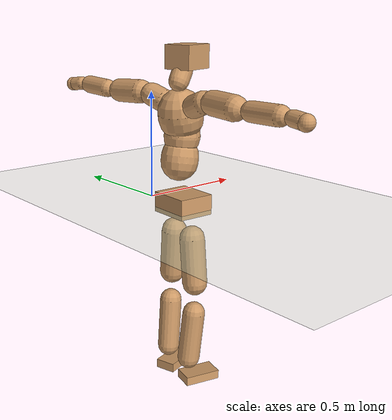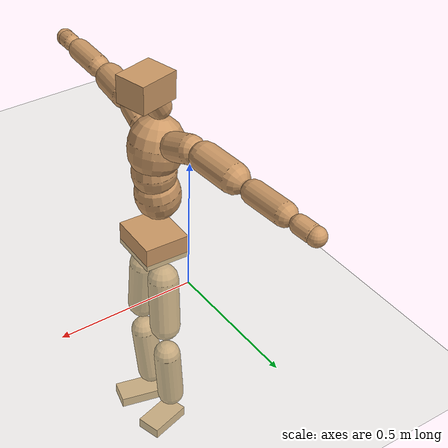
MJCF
<mujoco model="humanoid">
  <compiler coordinate="local" angle="radian"/>
  <default>
    <joint damping="0.0" armature="0.01" stiffness="0.0" limited="true"/>
    <geom conaffinity="1" condim="3" contype="7" margin="0.001" rgba="0.8 0.6 .4 1"/>
  </default>
  <asset>
    <texture type="skybox" builtin="gradient" rgb1=".4 .5 .6" rgb2="0 0 0" width="100" height="100"/>
    <texture builtin="flat" height="1278" mark="cross" markrgb="1 1 1" name="texgeom" random="0.01" rgb1="0.8 0.6 0.4" rgb2="0.8 0.6 0.4" type="cube" width="127"/>
    <texture builtin="checker" height="100" name="texplane" rgb1="0 0 0" rgb2="0.8 0.8 0.8" type="2d" width="100"/>
    <material name="MatPlane" reflectance="0.5" shininess="1" specular="1" texrepeat="60 60" texture="texplane"/>
    <material name="geom" texture="texgeom" texuniform="true"/>
  </asset>
  <worldbody>
    <light cutoff="100" diffuse="1 1 1" dir="-0 0 -1.3" directional="true" exponent="1" pos="0 0 1.3" specular=".1 .1 .1"/>
    <geom conaffinity="1" condim="3" name="floor" pos="0 0 0" rgba="0.8 0.9 0.8 1" size="100 100 .2" type="plane" material="MatPlane"/>
    <body name="Pelvis" pos="-0.005 -0.2477 0.0308">
      <freejoint name="Pelvis"/>
      <geom type="box" contype="1" conaffinity="1" density="500" pos="-0.0099 0.0004 -0.0074" size="0.0861 0.0982 0.0463" quat="0.9998 0.0000 0.0000 -0.0197" name="Pelvis"/>
      <body name="L_Hip" pos="-0.0133 0.0532 -0.0811">
        <joint name="L_Hip_x" type="hinge" pos="0 0 0" axis="1 0 0" stiffness="800" damping="80" armature="0.02" range="-180.0000 180.0000"/>
        <joint name="L_Hip_y" type="hinge" pos="0 0 0" axis="0 1 0" stiffness="800" damping="80" armature="0.02" range="-180.0000 180.0000"/>
        <joint name="L_Hip_z" type="hinge" pos="0 0 0" axis="0 0 1" stiffness="800" damping="80" armature="0.02" range="-180.0000 180.0000"/>
        <geom type="capsule" contype="1" conaffinity="1" density="500" fromto="0.0023 0.0074 -0.0713 0.0092 0.0295 -0.2852" size="0.0582" name="L_Hip"/>
        <body name="L_Knee" pos="0.0115 0.0368 -0.3565">
          <joint name="L_Knee_x" type="hinge" pos="0 0 0" axis="1 0 0" stiffness="800" damping="80" armature="0.02" range="-180.0000 180.0000"/>
          <joint name="L_Knee_y" type="hinge" pos="0 0 0" axis="0 1 0" stiffness="800" damping="80" armature="0.02" range="-180.0000 180.0000"/>
          <joint name="L_Knee_z" type="hinge" pos="0 0 0" axis="0 0 1" stiffness="800" damping="80" armature="0.02" range="-180.0000 180.0000"/>
          <geom type="capsule" contype="1" conaffinity="1" density="500" fromto="-0.0073 -0.0029 -0.0784 -0.0292 -0.0115 -0.3137" size="0.0518" name="L_Knee"/>
          <body name="L_Ankle" pos="-0.0365 -0.0143 -0.3921">
            <joint name="L_Ankle_x" type="hinge" pos="0 0 0" axis="1 0 0" stiffness="800" damping="80" armature="0.02" range="-180.0000 180.0000"/>
            <joint name="L_Ankle_y" type="hinge" pos="0 0 0" axis="0 1 0" stiffness="800" damping="80" armature="0.02" range="-180.0000 180.0000"/>
            <joint name="L_Ankle_z" type="hinge" pos="0 0 0" axis="0 0 1" stiffness="800" damping="80" armature="0.02" range="-180.0000 180.0000"/>
            <geom type="box" contype="1" conaffinity="1" density="500" pos="0.0580 0.0162 -0.0275" size="0.0838 0.0476 0.0215" quat="0.9907 0.0000 0.0000 0.1357" name="L_Ankle"/>
            <body name="L_Toe" pos="0.1159 0.0324 -0.0551">
              <joint name="L_Toe_x" type="hinge" pos="0 0 0" axis="1 0 0" stiffness="500" damping="50" armature="0.02" range="-180.0000 180.0000"/>
              <joint name="L_Toe_y" type="hinge" pos="0 0 0" axis="0 1 0" stiffness="500" damping="50" armature="0.02" range="-180.0000 180.0000"/>
              <joint name="L_Toe_z" type="hinge" pos="0 0 0" axis="0 0 1" stiffness="500" damping="50" armature="0.02" range="-180.0000 180.0000"/>
              <geom type="box" contype="1" conaffinity="1" density="500" pos="0.0000 0.0000 0.0271" size="0.001 0.0024 0.0011" quat="0.9900 0.0000 0.0000 0.1413" name="L_Toe"/>
            </body>
          </body>
        </body>
      </body>
      <body name="R_Hip" pos="-0.0076 -0.055 -0.0906">
        <joint name="R_Hip_x" type="hinge" pos="0 0 0" axis="1 0 0" stiffness="800" damping="80" armature="0.02" range="-180.0000 180.0000"/>
        <joint name="R_Hip_y" type="hinge" pos="0 0 0" axis="0 1 0" stiffness="800" damping="80" armature="0.02" range="-180.0000 180.0000"/>
        <joint name="R_Hip_z" type="hinge" pos="0 0 0" axis="0 0 1" stiffness="800" damping="80" armature="0.02" range="-180.0000 180.0000"/>
        <geom type="capsule" contype="1" conaffinity="1" density="500" fromto="-0.0001 -0.0073 -0.0710 -0.0005 -0.0291 -0.2841" size="0.0576" name="R_Hip"/>
        <body name="R_Knee" pos="-0.0007 -0.0364 -0.3551">
          <joint name="R_Knee_x" type="hinge" pos="0 0 0" axis="1 0 0" stiffness="800" damping="80" armature="0.02" range="-180.0000 180.0000"/>
          <joint name="R_Knee_y" type="hinge" pos="0 0 0" axis="0 1 0" stiffness="800" damping="80" armature="0.02" range="-180.0000 180.0000"/>
          <joint name="R_Knee_z" type="hinge" pos="0 0 0" axis="0 0 1" stiffness="800" damping="80" armature="0.02" range="-180.0000 180.0000"/>
          <geom type="capsule" contype="1" conaffinity="1" density="500" fromto="-0.0067 0.0037 -0.0772 -0.0266 0.0150 -0.3087" size="0.0519" name="R_Knee"/>
          <body name="R_Ankle" pos="-0.0333 0.0187 -0.3858">
            <joint name="R_Ankle_x" type="hinge" pos="0 0 0" axis="1 0 0" stiffness="800" damping="80" armature="0.02" range="-180.0000 180.0000"/>
            <joint name="R_Ankle_y" type="hinge" pos="0 0 0" axis="0 1 0" stiffness="800" damping="80" armature="0.02" range="-180.0000 180.0000"/>
            <joint name="R_Ankle_z" type="hinge" pos="0 0 0" axis="0 0 1" stiffness="800" damping="80" armature="0.02" range="-180.0000 180.0000"/>
            <geom type="box" contype="1" conaffinity="1" density="500" pos="0.0615 -0.0150 -0.0281" size="0.0849 0.0478 0.0209" quat="0.9929 0.0000 0.0000 -0.1192" name="R_Ankle"/>
            <body name="R_Toe" pos="0.1231 -0.03 -0.0562">
              <joint name="R_Toe_x" type="hinge" pos="0 0 0" axis="1 0 0" stiffness="500" damping="50" armature="0.02" range="-180.0000 180.0000"/>
              <joint name="R_Toe_y" type="hinge" pos="0 0 0" axis="0 1 0" stiffness="500" damping="50" armature="0.02" range="-180.0000 180.0000"/>
              <joint name="R_Toe_z" type="hinge" pos="0 0 0" axis="0 0 1" stiffness="500" damping="50" armature="0.02" range="-180.0000 180.0000"/>
              <geom type="box" contype="1" conaffinity="1" density="500" pos="0.0000 0.0000 0.0280" size="0.0011 0.0024 0.001" quat="0.9939 0.0000 0.0000 -0.1098" name="R_Toe"/>
            </body>
          </body>
        </body>
      </body>
      <body name="Torso" pos="-0.0384 0.0042 0.1274">
        <joint name="Torso_x" type="hinge" pos="0 0 0" axis="1 0 0" stiffness="1000" damping="100" armature="0.02" range="-180.0000 180.0000"/>
        <joint name="Torso_y" type="hinge" pos="0 0 0" axis="0 1 0" stiffness="1000" damping="100" armature="0.02" range="-180.0000 180.0000"/>
        <joint name="Torso_z" type="hinge" pos="0 0 0" axis="0 0 1" stiffness="1000" damping="100" armature="0.02" range="-180.0000 180.0000"/>
        <geom type="capsule" contype="1" conaffinity="1" density="500" fromto="0.0158 0.0036 0.0854 0.0106 0.0024 0.0569" size="0.0841" name="Torso"/>
        <body name="Spine" pos="0.0264 0.0061 0.1423">
          <joint name="Spine_x" type="hinge" pos="0 0 0" axis="1 0 0" stiffness="1000" damping="100" armature="0.02" range="-180.0000 180.0000"/>
          <joint name="Spine_y" type="hinge" pos="0 0 0" axis="0 1 0" stiffness="1000" damping="100" armature="0.02" range="-180.0000 180.0000"/>
          <joint name="Spine_z" type="hinge" pos="0 0 0" axis="0 0 1" stiffness="1000" damping="100" armature="0.02" range="-180.0000 180.0000"/>
          <geom type="capsule" contype="1" conaffinity="1" density="500" fromto="0.0026 -0.0008 0.0342 0.0017 -0.0005 0.0228" size="0.0815" name="Spine"/>
          <body name="Chest" pos="0.0044 -0.0013 0.057">
            <joint name="Chest_x" type="hinge" pos="0 0 0" axis="1 0 0" stiffness="1000" damping="100" armature="0.02" range="-180.0000 180.0000"/>
            <joint name="Chest_y" type="hinge" pos="0 0 0" axis="0 1 0" stiffness="1000" damping="100" armature="0.02" range="-180.0000 180.0000"/>
            <joint name="Chest_z" type="hinge" pos="0 0 0" axis="0 0 1" stiffness="1000" damping="100" armature="0.02" range="-180.0000 180.0000"/>
            <geom type="capsule" contype="1" conaffinity="1" density="500" fromto="-0.0178 -0.0049 0.0834 -0.0119 -0.0033 0.0556" size="0.101" name="Chest"/>
            <body name="Neck" pos="-0.0423 -0.0141 0.1999">
              <joint name="Neck_x" type="hinge" pos="0 0 0" axis="1 0 0" stiffness="500" damping="50" armature="0.02" range="-180.0000 180.0000"/>
              <joint name="Neck_y" type="hinge" pos="0 0 0" axis="0 1 0" stiffness="500" damping="50" armature="0.02" range="-180.0000 180.0000"/>
              <joint name="Neck_z" type="hinge" pos="0 0 0" axis="0 0 1" stiffness="500" damping="50" armature="0.02" range="-180.0000 180.0000"/>
              <geom type="capsule" contype="1" conaffinity="1" density="500" fromto="0.0086 0.0018 0.0152 0.0344 0.0071 0.0608" size="0.0449" name="Neck"/>
              <body name="Head" pos="0.043 0.0089 0.076">
                <joint name="Head_x" type="hinge" pos="0 0 0" axis="1 0 0" stiffness="500" damping="50" armature="0.02" range="-180.0000 180.0000"/>
                <joint name="Head_y" type="hinge" pos="0 0 0" axis="0 1 0" stiffness="500" damping="50" armature="0.02" range="-180.0000 180.0000"/>
                <joint name="Head_z" type="hinge" pos="0 0 0" axis="0 0 1" stiffness="500" damping="50" armature="0.02" range="-180.0000 180.0000"/>
                <geom type="box" contype="1" conaffinity="1" density="500" pos="0.0225 0.0054 0.0390" size="0.0767 0.0627 0.0522" quat="0.9930 0.0000 0.0000 0.1183" name="Head"/>
              </body>
            </body>
            <body name="L_Thorax" pos="-0.0211 0.071 0.1095">
              <joint name="L_Thorax_x" type="hinge" pos="0 0 0" axis="1 0 0" stiffness="500" damping="50" armature="0.02" range="-180.0000 180.0000"/>
              <joint name="L_Thorax_y" type="hinge" pos="0 0 0" axis="0 1 0" stiffness="500" damping="50" armature="0.02" range="-180.0000 180.0000"/>
              <joint name="L_Thorax_z" type="hinge" pos="0 0 0" axis="0 0 1" stiffness="500" damping="50" armature="0.02" range="-180.0000 180.0000"/>
              <geom type="capsule" contype="1" conaffinity="1" density="500" fromto="-0.0041 0.0245 0.0081 -0.0165 0.0982 0.0323" size="0.0518" name="L_Thorax"/>
              <body name="L_Shoulder" pos="-0.0206 0.1227 0.0403">
                <joint name="L_Shoulder_x" type="hinge" pos="0 0 0" axis="1 0 0" stiffness="500" damping="50" armature="0.02" range="-720.0000 720.0000"/>
                <joint name="L_Shoulder_y" type="hinge" pos="0 0 0" axis="0 1 0" stiffness="500" damping="50" armature="0.02" range="-720.0000 720.0000"/>
                <joint name="L_Shoulder_z" type="hinge" pos="0 0 0" axis="0 0 1" stiffness="500" damping="50" armature="0.02" range="-720.0000 720.0000"/>
                <geom type="capsule" contype="1" conaffinity="1" density="500" fromto="-0.0045 0.0464 -0.0020 -0.0181 0.1856 -0.0080" size="0.054" name="L_Shoulder"/>
                <body name="L_Elbow" pos="-0.0227 0.232 -0.01">
                  <joint name="L_Elbow_x" type="hinge" pos="0 0 0" axis="1 0 0" stiffness="500" damping="50" armature="0.02" range="-720.0000 720.0000"/>
                  <joint name="L_Elbow_y" type="hinge" pos="0 0 0" axis="0 1 0" stiffness="500" damping="50" armature="0.02" range="-720.0000 720.0000"/>
                  <joint name="L_Elbow_z" type="hinge" pos="0 0 0" axis="0 0 1" stiffness="500" damping="50" armature="0.02" range="-720.0000 720.0000"/>
                  <geom type="capsule" contype="1" conaffinity="1" density="500" fromto="-0.0016 0.0491 0.0021 -0.0064 0.1963 0.0082" size="0.042" name="L_Elbow"/>
                  <body name="L_Wrist" pos="-0.008 0.2454 0.0103">
                    <joint name="L_Wrist_x" type="hinge" pos="0 0 0" axis="1 0 0" stiffness="300" damping="30" armature="0.02" range="-180.0000 180.0000"/>
                    <joint name="L_Wrist_y" type="hinge" pos="0 0 0" axis="0 1 0" stiffness="300" damping="30" armature="0.02" range="-180.0000 180.0000"/>
                    <joint name="L_Wrist_z" type="hinge" pos="0 0 0" axis="0 0 1" stiffness="300" damping="30" armature="0.02" range="-180.0000 180.0000"/>
                    <geom type="capsule" contype="1" conaffinity="1" density="500" fromto="-0.0028 0.0162 -0.0020 -0.0114 0.0648 -0.0078" size="0.0324" name="L_Wrist"/>
                    <body name="L_Hand" pos="-0.0142 0.081 -0.0098">
                      <joint name="L_Hand_x" type="hinge" pos="0 0 0" axis="1 0 0" stiffness="300" damping="30" armature="0.02" range="-180.0000 180.0000"/>
                      <joint name="L_Hand_y" type="hinge" pos="0 0 0" axis="0 1 0" stiffness="300" damping="30" armature="0.02" range="-180.0000 180.0000"/>
                      <joint name="L_Hand_z" type="hinge" pos="0 0 0" axis="0 0 1" stiffness="300" damping="30" armature="0.02" range="-180.0000 180.0000"/>
                      <geom type="sphere" contype="1" conaffinity="1" density="500" size="0.0334" pos="0.0000 0.0000 0.0000" name="L_Hand"/>
                    </body>
                  </body>
                </body>
              </body>
            </body>
            <body name="R_Thorax" pos="-0.0257 -0.0816 0.1075">
              <joint name="R_Thorax_x" type="hinge" pos="0 0 0" axis="1 0 0" stiffness="500" damping="50" armature="0.02" range="-180.0000 180.0000"/>
              <joint name="R_Thorax_y" type="hinge" pos="0 0 0" axis="0 1 0" stiffness="500" damping="50" armature="0.02" range="-180.0000 180.0000"/>
              <joint name="R_Thorax_z" type="hinge" pos="0 0 0" axis="0 0 1" stiffness="500" damping="50" armature="0.02" range="-180.0000 180.0000"/>
              <geom type="capsule" contype="1" conaffinity="1" density="500" fromto="-0.0021 -0.0221 0.0081 -0.0082 -0.0883 0.0323" size="0.051" name="R_Thorax"/>
              <body name="R_Shoulder" pos="-0.0103 -0.1104 0.0403">
                <joint name="R_Shoulder_x" type="hinge" pos="0 0 0" axis="1 0 0" stiffness="500" damping="50" armature="0.02" range="-720.0000 720.0000"/>
                <joint name="R_Shoulder_y" type="hinge" pos="0 0 0" axis="0 1 0" stiffness="500" damping="50" armature="0.02" range="-720.0000 720.0000"/>
                <joint name="R_Shoulder_z" type="hinge" pos="0 0 0" axis="0 0 1" stiffness="500" damping="50" armature="0.02" range="-720.0000 720.0000"/>
                <geom type="capsule" contype="1" conaffinity="1" density="500" fromto="-0.0060 -0.0469 -0.0010 -0.0239 -0.1875 -0.0041" size="0.0536" name="R_Shoulder"/>
                <body name="R_Elbow" pos="-0.0298 -0.2343 -0.0051">
                  <joint name="R_Elbow_x" type="hinge" pos="0 0 0" axis="1 0 0" stiffness="500" damping="50" armature="0.02" range="-720.0000 720.0000"/>
                  <joint name="R_Elbow_y" type="hinge" pos="0 0 0" axis="0 1 0" stiffness="500" damping="50" armature="0.02" range="-720.0000 720.0000"/>
                  <joint name="R_Elbow_z" type="hinge" pos="0 0 0" axis="0 0 1" stiffness="500" damping="50" armature="0.02" range="-720.0000 720.0000"/>
                  <geom type="capsule" contype="1" conaffinity="1" density="500" fromto="-0.0012 -0.0489 0.0008 -0.0049 -0.1957 0.0032" size="0.042" name="R_Elbow"/>
                  <body name="R_Wrist" pos="-0.0061 -0.2446 0.004">
                    <joint name="R_Wrist_x" type="hinge" pos="0 0 0" axis="1 0 0" stiffness="300" damping="30" armature="0.02" range="-180.0000 180.0000"/>
                    <joint name="R_Wrist_y" type="hinge" pos="0 0 0" axis="0 1 0" stiffness="300" damping="30" armature="0.02" range="-180.0000 180.0000"/>
                    <joint name="R_Wrist_z" type="hinge" pos="0 0 0" axis="0 0 1" stiffness="300" damping="30" armature="0.02" range="-180.0000 180.0000"/>
                    <geom type="capsule" contype="1" conaffinity="1" density="500" fromto="-0.0018 -0.0164 -0.0016 -0.0072 -0.0656 -0.0063" size="0.0326" name="R_Wrist"/>
                    <body name="R_Hand" pos="-0.0091 -0.082 -0.0079">
                      <joint name="R_Hand_x" type="hinge" pos="0 0 0" axis="1 0 0" stiffness="300" damping="30" armature="0.02" range="-180.0000 180.0000"/>
                      <joint name="R_Hand_y" type="hinge" pos="0 0 0" axis="0 1 0" stiffness="300" damping="30" armature="0.02" range="-180.0000 180.0000"/>
                      <joint name="R_Hand_z" type="hinge" pos="0 0 0" axis="0 0 1" stiffness="300" damping="30" armature="0.02" range="-180.0000 180.0000"/>
                      <geom type="sphere" contype="1" conaffinity="1" density="500" size="0.0335" pos="0.0000 0.0000 0.0000" name="R_Hand"/>
                    </body>
                  </body>
                </body>
              </body>
            </body>
          </body>
        </body>
      </body>
    </body>
  </worldbody>
  <actuator>
    <motor name="L_Hip_x" joint="L_Hip_x" gear="500"/>
    <motor name="L_Hip_y" joint="L_Hip_y" gear="500"/>
    <motor name="L_Hip_z" joint="L_Hip_z" gear="500"/>
    <motor name="L_Knee_x" joint="L_Knee_x" gear="500"/>
    <motor name="L_Knee_y" joint="L_Knee_y" gear="500"/>
    <motor name="L_Knee_z" joint="L_Knee_z" gear="500"/>
    <motor name="L_Ankle_x" joint="L_Ankle_x" gear="500"/>
    <motor name="L_Ankle_y" joint="L_Ankle_y" gear="500"/>
    <motor name="L_Ankle_z" joint="L_Ankle_z" gear="500"/>
    <motor name="L_Toe_x" joint="L_Toe_x" gear="500"/>
    <motor name="L_Toe_y" joint="L_Toe_y" gear="500"/>
    <motor name="L_Toe_z" joint="L_Toe_z" gear="500"/>
    <motor name="R_Hip_x" joint="R_Hip_x" gear="500"/>
    <motor name="R_Hip_y" joint="R_Hip_y" gear="500"/>
    <motor name="R_Hip_z" joint="R_Hip_z" gear="500"/>
    <motor name="R_Knee_x" joint="R_Knee_x" gear="500"/>
    <motor name="R_Knee_y" joint="R_Knee_y" gear="500"/>
    <motor name="R_Knee_z" joint="R_Knee_z" gear="500"/>
    <motor name="R_Ankle_x" joint="R_Ankle_x" gear="500"/>
    <motor name="R_Ankle_y" joint="R_Ankle_y" gear="500"/>
    <motor name="R_Ankle_z" joint="R_Ankle_z" gear="500"/>
    <motor name="R_Toe_x" joint="R_Toe_x" gear="500"/>
    <motor name="R_Toe_y" joint="R_Toe_y" gear="500"/>
    <motor name="R_Toe_z" joint="R_Toe_z" gear="500"/>
    <motor name="Torso_x" joint="Torso_x" gear="500"/>
    <motor name="Torso_y" joint="Torso_y" gear="500"/>
    <motor name="Torso_z" joint="Torso_z" gear="500"/>
    <motor name="Spine_x" joint="Spine_x" gear="500"/>
    <motor name="Spine_y" joint="Spine_y" gear="500"/>
    <motor name="Spine_z" joint="Spine_z" gear="500"/>
    <motor name="Chest_x" joint="Chest_x" gear="500"/>
    <motor name="Chest_y" joint="Chest_y" gear="500"/>
    <motor name="Chest_z" joint="Chest_z" gear="500"/>
    <motor name="Neck_x" joint="Neck_x" gear="500"/>
    <motor name="Neck_y" joint="Neck_y" gear="500"/>
    <motor name="Neck_z" joint="Neck_z" gear="500"/>
    <motor name="Head_x" joint="Head_x" gear="500"/>
    <motor name="Head_y" joint="Head_y" gear="500"/>
    <motor name="Head_z" joint="Head_z" gear="500"/>
    <motor name="L_Thorax_x" joint="L_Thorax_x" gear="500"/>
    <motor name="L_Thorax_y" joint="L_Thorax_y" gear="500"/>
    <motor name="L_Thorax_z" joint="L_Thorax_z" gear="500"/>
    <motor name="L_Shoulder_x" joint="L_Shoulder_x" gear="500"/>
    <motor name="L_Shoulder_y" joint="L_Shoulder_y" gear="500"/>
    <motor name="L_Shoulder_z" joint="L_Shoulder_z" gear="500"/>
    <motor name="L_Elbow_x" joint="L_Elbow_x" gear="500"/>
    <motor name="L_Elbow_y" joint="L_Elbow_y" gear="500"/>
    <motor name="L_Elbow_z" joint="L_Elbow_z" gear="500"/>
    <motor name="L_Wrist_x" joint="L_Wrist_x" gear="500"/>
    <motor name="L_Wrist_y" joint="L_Wrist_y" gear="500"/>
    <motor name="L_Wrist_z" joint="L_Wrist_z" gear="500"/>
    <motor name="L_Hand_x" joint="L_Hand_x" gear="500"/>
    <motor name="L_Hand_y" joint="L_Hand_y" gear="500"/>
    <motor name="L_Hand_z" joint="L_Hand_z" gear="500"/>
    <motor name="R_Thorax_x" joint="R_Thorax_x" gear="500"/>
    <motor name="R_Thorax_y" joint="R_Thorax_y" gear="500"/>
    <motor name="R_Thorax_z" joint="R_Thorax_z" gear="500"/>
    <motor name="R_Shoulder_x" joint="R_Shoulder_x" gear="500"/>
    <motor name="R_Shoulder_y" joint="R_Shoulder_y" gear="500"/>
    <motor name="R_Shoulder_z" joint="R_Shoulder_z" gear="500"/>
    <motor name="R_Elbow_x" joint="R_Elbow_x" gear="500"/>
    <motor name="R_Elbow_y" joint="R_Elbow_y" gear="500"/>
    <motor name="R_Elbow_z" joint="R_Elbow_z" gear="500"/>
    <motor name="R_Wrist_x" joint="R_Wrist_x" gear="500"/>
    <motor name="R_Wrist_y" joint="R_Wrist_y" gear="500"/>
    <motor name="R_Wrist_z" joint="R_Wrist_z" gear="500"/>
    <motor name="R_Hand_x" joint="R_Hand_x" gear="500"/>
    <motor name="R_Hand_y" joint="R_Hand_y" gear="500"/>
    <motor name="R_Hand_z" joint="R_Hand_z" gear="500"/>
  </actuator>
  <contact>
    <exclude body1="Torso" body2="Chest"/>
    <exclude body1="Head" body2="Chest"/>
    <exclude body1="R_Knee" body2="R_Toe"/>
    <exclude body1="R_Knee" body2="L_Ankle"/>
    <exclude body1="R_Knee" body2="L_Toe"/>
    <exclude body1="L_Knee" body2="L_Toe"/>
    <exclude body1="L_Knee" body2="R_Ankle"/>
    <exclude body1="L_Knee" body2="R_Toe"/>
    <exclude body1="L_Shoulder" body2="Chest"/>
    <exclude body1="R_Shoulder" body2="Chest"/>
  </contact>
  <sensor/>
  <size njmax="700" nconmax="700"/>
</mujoco>
